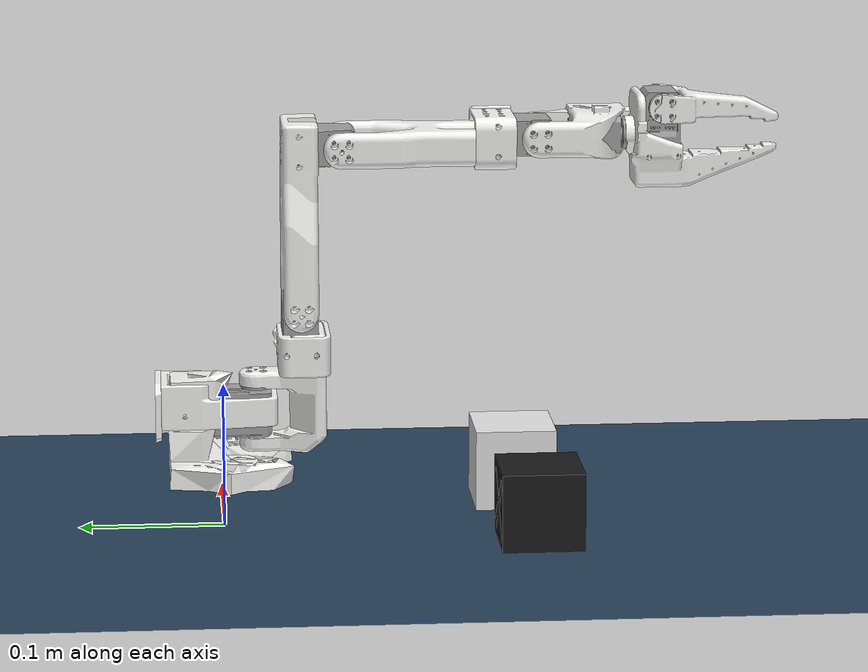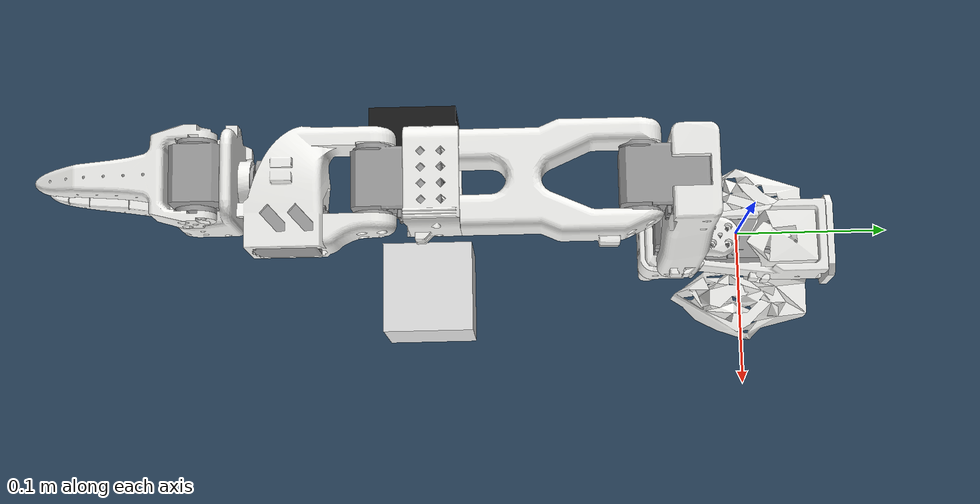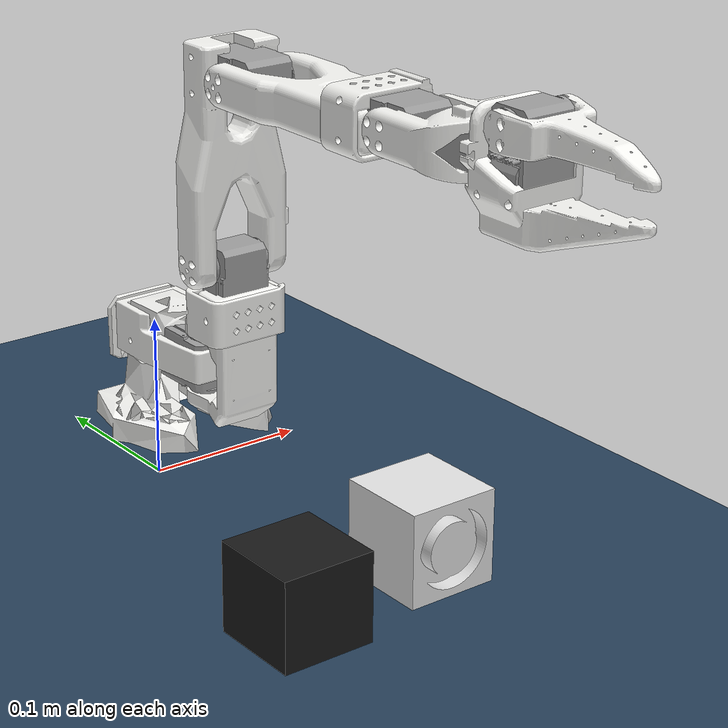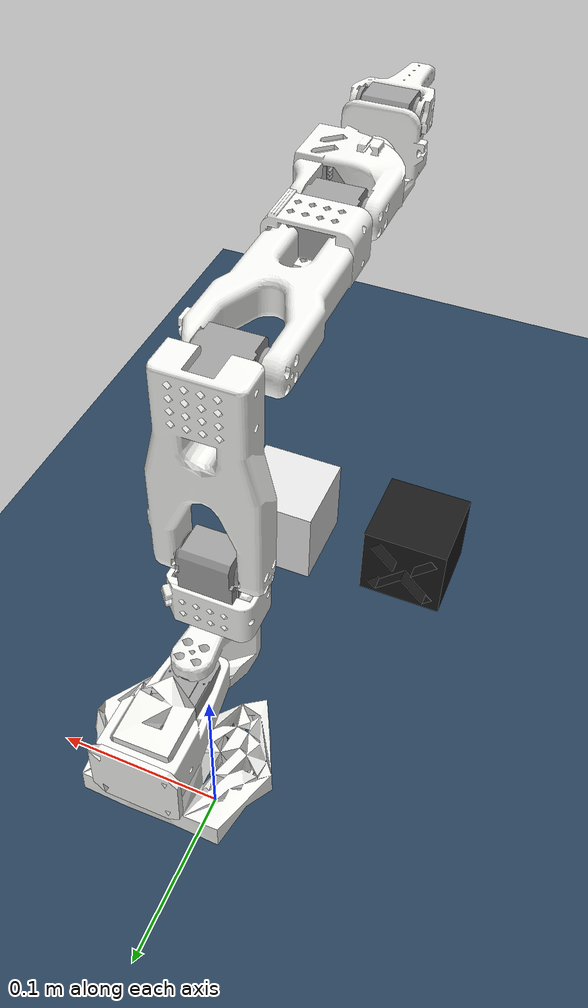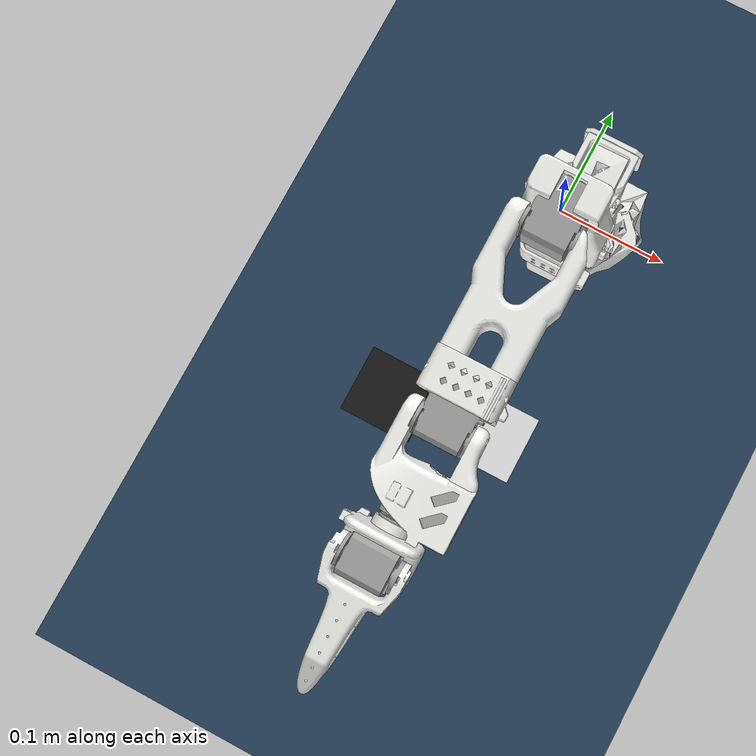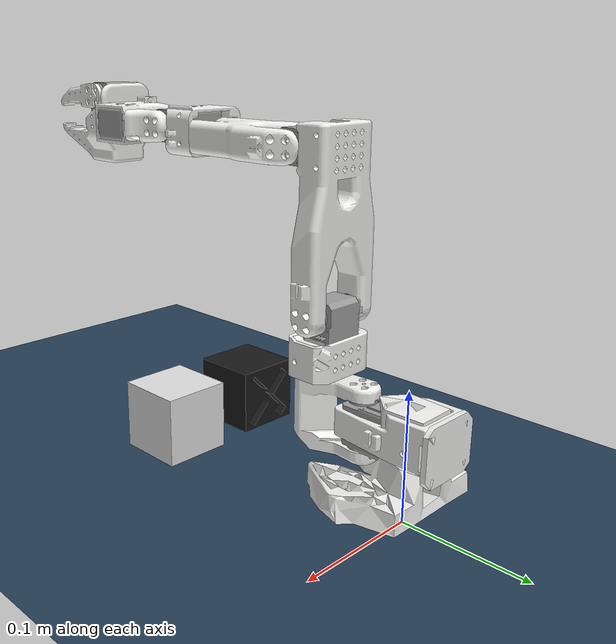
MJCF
<mujoco model="so_arm101 scene">
    <compiler angle="radian" meshdir="assets/"/>

    <option cone="elliptic" impratio="10"/>

    <statistic center="0 -0.2 0.1" extent="0.4"/>

    <!-- Physics settings -->
    <option gravity="0 0 -9.81" timestep="0.002" iterations="100"/>

    <visual>
        <headlight diffuse="0.6 0.6 0.6" ambient="0.3 0.3 0.3" specular="0 0 0"/>
        <rgba haze="0.15 0.25 0.35 1"/>
        <global azimuth="140" elevation="-30"/>
    </visual>

    <asset>
        <!-- Include all robot assets -->
        <material name="orange" rgba="1.0 0.331 0.0 1.0" specular="0.1" shininess="0.1"/>
        <material name="black" rgba="0.1 0.1 0.1 1.0" specular="0.1" shininess="0.1"/>

        <mesh file="rotation_pitch_so101_v1.stl"/>
        <mesh file="moving_jaw_so101_v1.stl"/>
        <mesh file="sts3215_03a_v1.stl"/>
        <mesh file="motor_holder_so101_wrist_v1.stl"/>
        <mesh file="wrist_roll_follower_so101_v1.stl"/>
        <mesh file="base_so101_v2.stl"/>
        <mesh file="under_arm_so101_v1.stl"/>
        <mesh file="wrist_roll_pitch_so101_v2.stl"/>
        <mesh file="waveshare_mounting_plate_so101_v2.stl"/>
        <mesh file="sts3215_03a_no_horn_v1.stl"/>
        <mesh file="motor_holder_so101_base_v1.stl"/>
        <mesh file="base_motor_holder_so101_v1.stl"/>
        <mesh file="upper_arm_so101_v1.stl"/>
        <material name="base_motor_holder_so101_v1_material" rgba="0.964706 0.964706 0.952941 1"/>
        <material name="base_so101_v2_material" rgba="0.964706 0.964706 0.952941 1"/>
        <material name="sts3215_03a_v1_material" rgba="0.627451 0.627451 0.627451 1"/>
        <material name="waveshare_mounting_plate_so101_v2_material" rgba="0.964706 0.964706 0.952941 1"/>
        <material name="motor_holder_so101_base_v1_material" rgba="0.964706 0.964706 0.952941 1"/>
        <material name="rotation_pitch_so101_v1_material" rgba="0.964706 0.964706 0.952941 1"/>
        <material name="upper_arm_so101_v1_material" rgba="0.964706 0.964706 0.952941 1"/>
        <material name="under_arm_so101_v1_material" rgba="0.964706 0.964706 0.952941 1"/>
        <material name="motor_holder_so101_wrist_v1_material" rgba="0.964706 0.964706 0.952941 1"/>
        <material name="sts3215_03a_no_horn_v1_material" rgba="0.627451 0.627451 0.627451 1"/>
        <material name="wrist_roll_pitch_so101_v2_material" rgba="0.964706 0.964706 0.952941 1"/>
        <material name="wrist_roll_follower_so101_v1_material" rgba="0.964706 0.964706 0.952941 1"/>
        <material name="moving_jaw_so101_v1_material" rgba="0.964706 0.964706 0.952941 1"/>

        <!-- Scene assets -->
        <texture type="skybox" builtin="gradient" rgb1="0.3 0.5 0.7" rgb2="0 0 0" width="512" height="3072"/>
        <texture type="2d" name="groundplane" builtin="checker" mark="edge" rgb1="0.2 0.3 0.4" rgb2="0.1 0.2 0.3" markrgb="0.8 0.8 0.8" width="300" height="300"/>
        <material name="groundplane" texture="groundplane" texuniform="true" texrepeat="5 5" reflectance="0.2"/>

        <!-- Materials for the cubes -->
        <material name="red_mat" rgba="0.8 0.2 0.2 1" specular="0.5" shininess="0.5"/>
        <material name="blue_mat" rgba="0.2 0.2 0.8 1" specular="0.5" shininess="0.5"/>
        <material name="black_mat" rgba="0.1 0.1 0.1 1" specular="0.1" shininess="0.1"/>
        <material name="white_mat" rgba="0.9 0.9 0.9 1" specular="0.3" shininess="0.3"/>

        <!-- tic tac toe cubes -->
        <mesh name="o2_cube" file="o2-75.stl" scale="0.0025 0.0025 0.0025"/>
        <mesh name="x2_cube" file="x2-75.stl" scale="0.0025 0.0025 0.0025"/>
    </asset>

    <default>
    <default class="so101_new_calib">
      <joint frictionloss="0.1" armature="0.005"/>
      <position kp="50" dampratio="1"/>
      <default class="visual">
        <geom type="mesh" contype="0" conaffinity="0" group="2"/>
      </default>
      <default class="collision">
        <geom group="3" contype="1" conaffinity="1"/>
      </default>
    </default>
    </default>
    <default>
    <default class="sts3215">
      <geom contype="0" conaffinity="0"/>
      <joint damping="0.60" frictionloss="0.052" armature="0.028"/>
      <position kp="17.8" kv="0.0" forcerange="-3.35 3.35"/>
    </default>
    <default class="backlash">
      <!-- +/- 0.5° of backlash -->
      <joint damping="0.01" frictionloss="0" armature="0.01" limited="true" range="-0.008726646259971648 0.008726646259971648"/>
    </default>
    </default>

    <worldbody>
        <!-- Floor and lighting -->
        <light pos="0 0 1.5" dir="0 0 -1" directional="true"/>
        <!-- Floor -->
        <!-- Visual floor -->
        <geom name="floor_visual" size="0 0 0.05" type="plane" material="groundplane"
              contype="0" conaffinity="0" group="2"/>
        <!-- Collision floor -->
        <geom name="floor_collision" size="0 0 0.05" type="plane"
              contype="1" conaffinity="1" group="3" class="collision"/>

        <!-- Robot arm (copied from so101_new_calib.xml) -->
       <!-- Link base -->
    <body name="base" pos="0 0 0" quat="1 0 0 0" childclass="so101_new_calib">
      <inertial pos="0.020739 0.00204287 0.065966" mass="0.147" fullinertia="0.000136117 0.000114686 0.000130364 4.59787e-07 9.75275e-08 -4.97151e-06"/>
      <!-- Part base_motor_holder_so101_v1 -->
      <geom type="mesh" class="visual" pos="0.0206915 0.0221255 0.0300817" quat="0.707107 0.707107 7.85046e-16 8.68107e-16" mesh="base_motor_holder_so101_v1" material="base_motor_holder_so101_v1_material"/>
      <!-- Part base_so101_v2 -->
      <geom type="mesh" class="visual" pos="0.0207909 0.0221255 0.0300817" quat="0.707107 0.707107 -0 -0" mesh="base_so101_v2" material="base_so101_v2_material"/>
      <!-- Part sts3215_03a_v1 -->
      <geom type="mesh" class="visual" pos="0.0207909 -0.0105745 0.0761817" quat="0.707107 -7.69919e-16 8.95976e-16 -0.707107" mesh="sts3215_03a_v1" material="sts3215_03a_v1_material"/>
      <!-- Part waveshare_mounting_plate_so101_v2 -->
      <geom type="mesh" class="visual" pos="0.0205915 0.0467435 0.0798817" quat="0.707107 0.707107 -3.34318e-15 5.1276e-15" mesh="waveshare_mounting_plate_so101_v2" material="waveshare_mounting_plate_so101_v2_material"/>
      <!-- Frame base -->
      <site group="3" name="base" pos="0.020791 0.0157608 0.0324817" quat="0 1 0 0"/>
      <!-- Link shoulder -->
      <body name="shoulder" pos="0.0207909 -0.0230745 0.0948817" quat="7.88629e-16 -0.707107 -0.707107 7.69003e-16">
        <!-- Joint from base to shoulder -->
        <joint axis="0 0 1" name="1" type="hinge" range="-1.9198621771937616 1.9198621771937634" class="sts3215"/>
        <inertial pos="-0.0307604 -1.66727e-05 -0.0252713" mass="0.100006" fullinertia="8.3759e-05 8.10403e-05 2.39783e-05 7.55525e-08 -1.16342e-06 1.54663e-07"/>
        <!-- Part sts3215_03a_v1_2 -->
        <geom type="mesh" class="visual" pos="-0.0303992 0.000422241 -0.0417" quat="0.5 0.5 0.5 -0.5" mesh="sts3215_03a_v1" material="sts3215_03a_v1_material"/>
        <geom type="mesh" class="collision" pos="-0.0303992 0.000422241 -0.0417" quat="0.5 0.5 0.5 -0.5" mesh="sts3215_03a_v1" material="sts3215_03a_v1_material"/>
        <!-- Part motor_holder_so101_base_v1 -->
        <geom type="mesh" class="visual" pos="-0.0675992 -0.000177759 0.0158499" quat="0.5 0.5 -0.5 0.5" mesh="motor_holder_so101_base_v1" material="motor_holder_so101_base_v1_material"/>
        <geom type="mesh" class="collision" pos="-0.0675992 -0.000177759 0.0158499" quat="0.5 0.5 -0.5 0.5" mesh="motor_holder_so101_base_v1" material="motor_holder_so101_base_v1_material"/>
        <!-- Part rotation_pitch_so101_v1 -->
        <geom type="mesh" class="visual" pos="0.0122008 2.22413e-05 0.0464" quat="0.707107 -0.707107 0 0" mesh="rotation_pitch_so101_v1" material="rotation_pitch_so101_v1_material"/>
        <geom type="mesh" class="collision" pos="0.0122008 2.22413e-05 0.0464" quat="0.707107 -0.707107 0 0" mesh="rotation_pitch_so101_v1" material="rotation_pitch_so101_v1_material"/>
        <!-- Link upper_arm -->
        <body name="upper_arm" pos="-0.0303992 -0.0182778 -0.0542" quat="0.5 -0.5 -0.5 -0.5">
          <!-- Joint from shoulder to upper_arm -->
          <joint axis="0 0 1" name="2" type="hinge" range="-1.7453292519943269 1.7453292519943322" class="sts3215"/>
          <inertial pos="-0.0898471 -0.00838224 0.0184089" mass="0.103" fullinertia="4.08002e-05 0.000147318 0.000142487 -1.97819e-05 -4.03016e-08 8.97326e-09"/>
          <!-- Part sts3215_03a_v1_3 -->
          <geom type="mesh" class="visual" pos="-0.11257 -0.0155 0.0187" quat="4.31775e-16 -0.707107 0.707107 -2.94392e-16" mesh="sts3215_03a_v1" material="sts3215_03a_v1_material"/>
          <geom type="mesh" class="collision" pos="-0.11257 -0.0155 0.0187" quat="4.31775e-16 -0.707107 0.707107 -2.94392e-16" mesh="sts3215_03a_v1" material="sts3215_03a_v1_material"/>
          <!-- Part upper_arm_so101_v1 -->
          <geom type="mesh" class="visual" pos="-0.065085 0.012 0.0182" quat="0 1 0 0" mesh="upper_arm_so101_v1" material="upper_arm_so101_v1_material"/>
          <geom type="mesh" class="collision" pos="-0.065085 0.012 0.0182" quat="0 1 0 0" mesh="upper_arm_so101_v1" material="upper_arm_so101_v1_material"/>
          <!-- Link lower_arm -->
          <body name="lower_arm" pos="-0.11257 -0.028 2.46331e-16" quat="0.707107 -2.94392e-16 -3.85906e-16 0.707107">
            <!-- Joint from upper_arm to lower_arm -->
            <joint axis="0 0 1" name="3" type="hinge" range="-1.7453292519943295 1.5707963267948966" class="sts3215"/>
            <inertial pos="-0.0980701 0.00324376 0.0182831" mass="0.104" fullinertia="2.87438e-05 0.000159844 0.00014529 7.41152e-06 1.26409e-06 -4.90188e-08"/>
            <!-- Part under_arm_so101_v1 -->
            <geom type="mesh" class="visual" pos="-0.0648499 -0.032 0.0182" quat="0 1 0 0" mesh="under_arm_so101_v1" material="under_arm_so101_v1_material"/>
            <geom type="mesh" class="collision" pos="-0.0648499 -0.032 0.0182" quat="0 1 0 0" mesh="under_arm_so101_v1" material="under_arm_so101_v1_material"/>
            <!-- Part motor_holder_so101_wrist_v1 -->
            <geom type="mesh" class="visual" pos="-0.0648499 -0.032 0.018" quat="3.3891e-16 -1 -1.9186e-15 6.33174e-16" mesh="motor_holder_so101_wrist_v1" material="motor_holder_so101_wrist_v1_material"/>
            <geom type="mesh" class="collision" pos="-0.0648499 -0.032 0.018" quat="3.3891e-16 -1 -1.9186e-15 6.33174e-16" mesh="motor_holder_so101_wrist_v1" material="motor_holder_so101_wrist_v1_material"/>
            <!-- Part sts3215_03a_v1_4 -->
            <geom type="mesh" class="visual" pos="-0.1224 0.0052 0.0187" quat="8.32667e-16 -1.56949e-15 -1 5.55112e-16" mesh="sts3215_03a_v1" material="sts3215_03a_v1_material"/>
            <geom type="mesh" class="collision" pos="-0.1224 0.0052 0.0187" quat="8.32667e-16 -1.56949e-15 -1 5.55112e-16" mesh="sts3215_03a_v1" material="sts3215_03a_v1_material"/>
            <!-- Link wrist -->
            <body name="wrist" pos="-0.1349 0.0052 1.65232e-16" quat="0.707107 1.31614e-15 9.90601e-17 -0.707107">
              <!-- Joint from lower_arm to wrist -->
              <joint axis="0 0 1" name="4" type="hinge" range="-1.6580627969561903 1.658062781833036" class="sts3215"/>
              <inertial pos="-0.000103312 -0.0386143 0.0281156" mass="0.079" fullinertia="3.68263e-05 2.5391e-05 2.1e-05 1.7893e-08 -5.28128e-08 3.6412e-06"/>
              <!-- Part sts3215_03a_no_horn_v1 -->
              <geom type="mesh" class="visual" pos="5.55112e-17 -0.0424 0.0306" quat="0.5 0.5 0.5 -0.5" mesh="sts3215_03a_no_horn_v1" material="sts3215_03a_no_horn_v1_material"/>
              <geom type="mesh" class="collision" pos="5.55112e-17 -0.0424 0.0306" quat="0.5 0.5 0.5 -0.5" mesh="sts3215_03a_no_horn_v1" material="sts3215_03a_no_horn_v1_material"/>
              <!-- Part wrist_roll_pitch_so101_v2 -->
              <geom type="mesh" class="visual" pos="0 -0.028 0.0181" quat="0.5 -0.5 -0.5 -0.5" mesh="wrist_roll_pitch_so101_v2" material="wrist_roll_pitch_so101_v2_material"/>
              <geom type="mesh" class="collision" pos="0 -0.028 0.0181" quat="0.5 -0.5 -0.5 -0.5" mesh="wrist_roll_pitch_so101_v2" material="wrist_roll_pitch_so101_v2_material"/>
              <!-- Link gripper -->
              <body name="gripper" pos="0 -0.0611 0.0181" quat="3.31663e-08 -3.31663e-08 -0.707107 -0.707107">
                <!-- Joint from wrist to gripper -->
                <joint axis="0 0 1" name="5" type="hinge" range="-2.7925268969992407 2.7925267093826136" class="sts3215"/>
                <inertial pos="0.000213627 0.000245138 -0.025187" mass="0.087" fullinertia="2.75087e-05 4.33657e-05 3.45059e-05 -3.35241e-07 -5.7352e-06 -5.17847e-08"/>
                <!-- Part sts3215_03a_v1_5 -->
                <geom type="mesh" class="visual" pos="0.0077 0.0001 -0.0234" quat="0.707107 -0.707107 6.48145e-15 1.58472e-15" mesh="sts3215_03a_v1" material="sts3215_03a_v1_material"/>
                <geom type="mesh" class="collision" pos="0.0077 0.0001 -0.0234" quat="0.707107 -0.707107 6.48145e-15 1.58472e-15" mesh="sts3215_03a_v1" material="sts3215_03a_v1_material"/>
                <!-- Part wrist_roll_follower_so101_v1 -->
                <geom type="mesh" class="visual" pos="5.55112e-17 -0.000218214 0.000949706" quat="0 1 0 0" mesh="wrist_roll_follower_so101_v1" material="wrist_roll_follower_so101_v1_material"/>
                <geom type="mesh" class="collision" pos="5.55112e-17 -0.000218214 0.000949706" quat="0 1 0 0" mesh="wrist_roll_follower_so101_v1" material="wrist_roll_follower_so101_v1_material"/>
                <!-- Frame gripper -->
                <site group="3" name="gripper" pos="-0.0079 -0.000218121 -0.0981274" quat="0.5 -0.5 0.5 -0.5"/>
                <!-- Link moving_jaw_so101_v1 -->
                <body name="moving_jaw_so101_v1" pos="0.0202 0.0188 -0.0234" quat="0.707107 0.707107 1.47485e-15 -6.52758e-15">
                  <!-- Joint from gripper to moving_jaw_so101_v1 -->
                  <joint axis="0 0 1" name="6" type="hinge" range="-0.17453292519943295 1.7453292519943295" class="sts3215"/>
                  <inertial pos="-0.00157495 -0.0300244 0.0192755" mass="0.012" fullinertia="6.61427e-06 1.89032e-06 5.28738e-06 -3.19807e-07 -5.90717e-09 -1.09945e-07"/>
                  <!-- Part moving_jaw_so101_v1 -->
                  <geom type="mesh" class="visual" pos="-5.55112e-17 -1.94746e-17 0.0189" quat="1 -0 1.86338e-16 6.90343e-24" mesh="moving_jaw_so101_v1" material="moving_jaw_so101_v1_material"/>
                  <geom type="mesh" class="collision" pos="-5.55112e-17 -1.94746e-17 0.0189" quat="1 -0 1.86338e-16 6.90343e-24" mesh="moving_jaw_so101_v1" material="moving_jaw_so101_v1_material"/>
                </body>
              </body>
            </body>
          </body>
        </body>
      </body>
    </body>

        <!-- Red cube -->

        <!-- Blue cube -->

        <!-- o2 cube -->
        <body name="o2_cube" pos="0.05 -0.25 0.04">
            <freejoint name="o2_cube_joint"/>
            <!-- Visual geometry -->
            <geom name="o2_cube_visual" type="mesh" mesh="o2_cube" material="white_mat"
                  contype="0" conaffinity="0" group="2"/>
            <!-- Collision geometry -->
            <geom name="o2_cube_collision" type="mesh" mesh="o2_cube"
                  mass="0.5" friction="0.9 0.8 0.1" solref="0.01 1" solimp="1 1 0.0005"
                  contype="1" conaffinity="1" group="3" class="collision"/>
            <inertial pos="0 0 0" mass="0.5" diaginertia="0.001 0.001 0.001"/>
        </body>

        <!-- x2 cube -->
        <body name="x2_cube" pos="-0.05 -0.25 0.025">
            <freejoint name="x2_cube_joint"/>
            <!-- Visual geometry -->
            <geom name="x2_cube_visual" type="mesh" mesh="x2_cube" material="black_mat"
                  contype="0" conaffinity="0" group="2"/>
            <!-- Collision geometry -->
            <geom name="x2_cube_collision" type="mesh" mesh="x2_cube"
                  mass="0.5" friction="0.9 0.8 0.1" solref="0.01 1" solimp="1 1 0.0005"
                  contype="1" conaffinity="1" group="3" class="collision"/>
            <inertial pos="0 0 0" mass="0.5" diaginertia="0.001 0.001 0.001"/>
        </body>

        <!-- Camera definitions -->
        <!-- Top-down camera looking at the workspace -->
        <camera name="topdown" pos="0 -0.2 0.8" xyaxes="1 0 0 0 1 0"/>

        <!-- Front-side camera for alternative view -->
        <camera name="frontview" pos="0.5 -0.2 0.3" xyaxes="0 1 0 0 0 1"/>
    </worldbody>

    <actuator>
        <position class="sts3215" name="1" joint="1" inheritrange="1"/>
        <position class="sts3215" name="2" joint="2" inheritrange="1"/>
        <position class="sts3215" name="3" joint="3" inheritrange="1"/>
        <position class="sts3215" name="4" joint="4" inheritrange="1"/>
        <position class="sts3215" name="5" joint="5" inheritrange="1"/>
        <position class="sts3215" name="6" joint="6" inheritrange="1"/>
    </actuator>

    <contact>
        <!-- Exclude self-collision within robot arm to prevent interference -->
        <exclude body1="base" body2="shoulder"/>
        <exclude body1="shoulder" body2="upper_arm"/>
        <exclude body1="upper_arm" body2="lower_arm"/>
        <exclude body1="lower_arm" body2="wrist"/>
        <exclude body1="wrist" body2="gripper"/>
        <exclude body1="gripper" body2="moving_jaw_so101_v1"/>
    </contact>
</mujoco>
